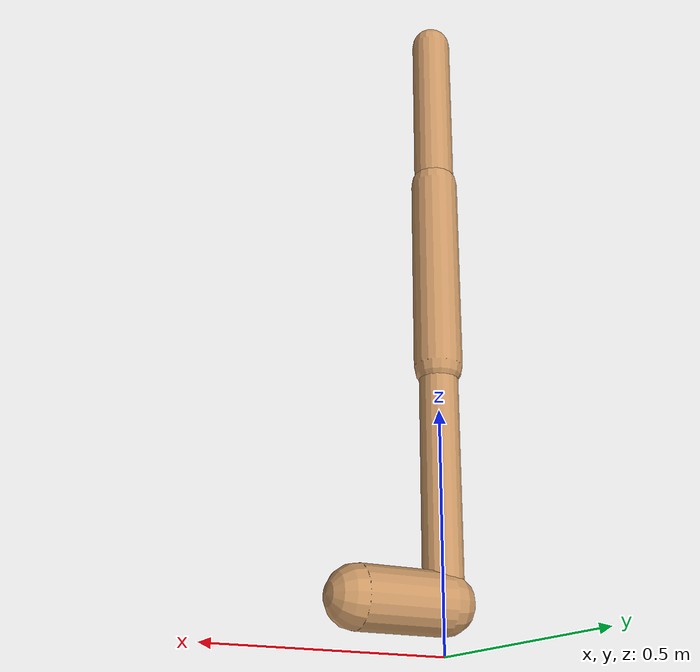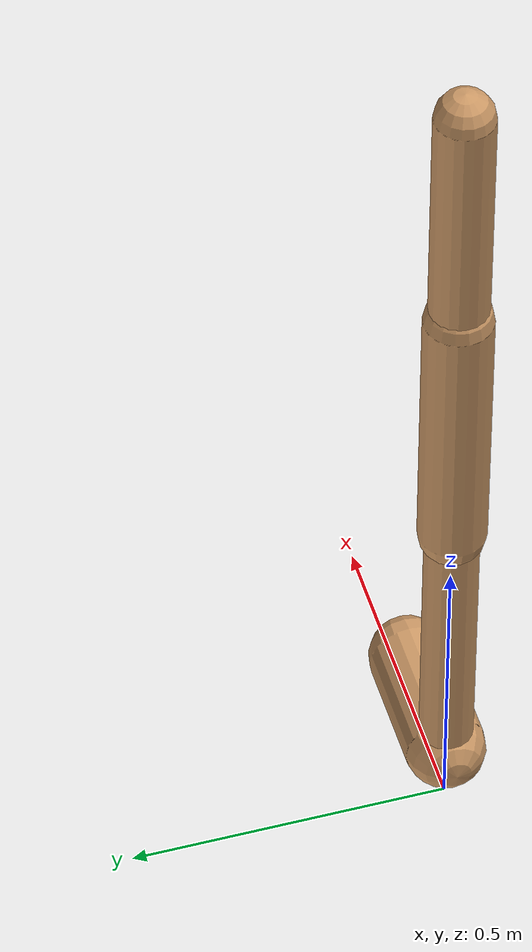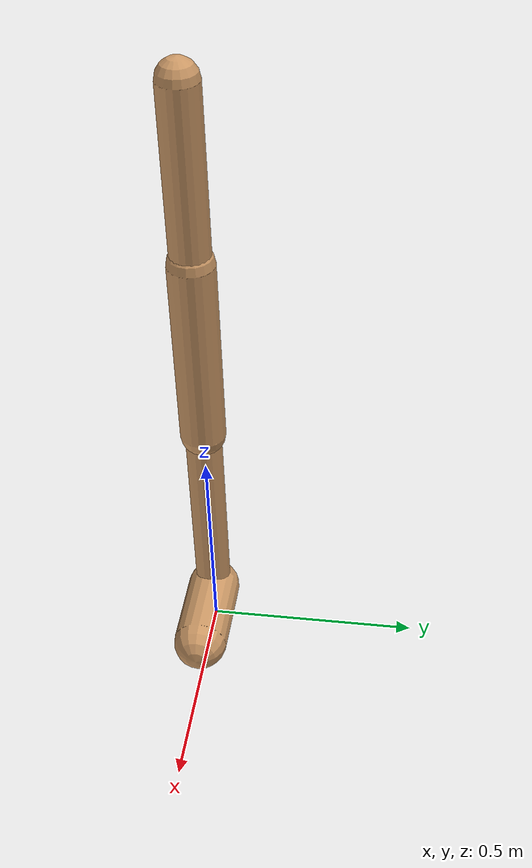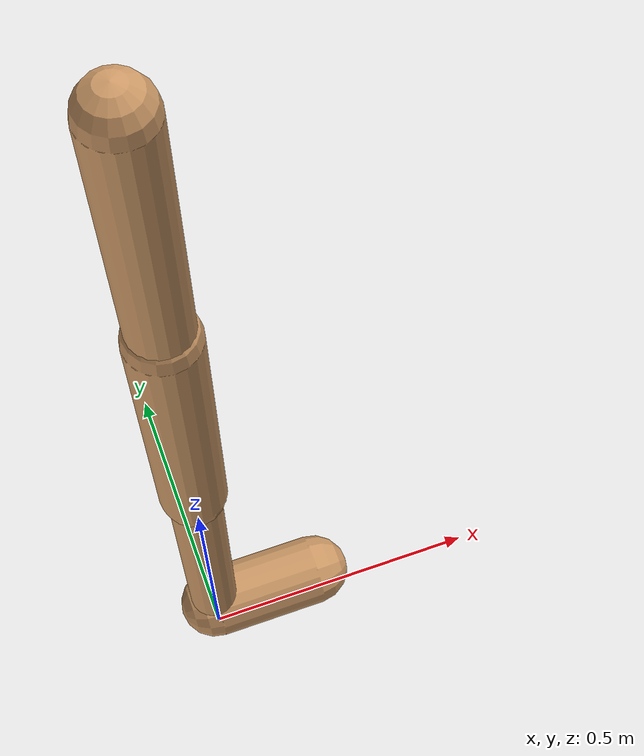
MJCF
<mujoco model="walker2d">
  <compiler angle="degree" coordinate="global" inertiafromgeom="true" />
  <default>
    <joint armature="0.01" damping=".1" limited="true" />
    <geom conaffinity="0" condim="3" contype="1" density="1000" friction="0.8 .1 .1" rgba="0.8 0.6 .4 1" />
  </default>
  <option integrator="RK4" timestep="0.002" />
  <worldbody>

    <body name="torso" pos="0 0 0.0005712190674055829">
      <joint armature="0" axis="1 0 0" damping="0" limited="false" name="ignorex" pos="0 0 0" stiffness="0" type="slide" />
      <joint armature="0" axis="0 0 1" damping="0" limited="false" name="ignorez" pos="0 0 0" ref="1.25" stiffness="0" type="slide" />
      <joint armature="0" axis="0 1 0" damping="0" limited="false" name="ignorey" pos="0 0 0" stiffness="0" type="hinge" />
      <geom fromto="0 0 1.45 0 0 1.05" name="torso_geom" size="0.04517333094257867" type="capsule" />
      <body name="thigh">
        <joint axis="0 -1 0" name="thigh_joint" pos="0 0 1.05" range="-150 0" type="hinge" />
        <geom fromto="0.0 0.0 1.05 0.0 0.0 0.5997294225470183" name="thigh_geom" size="0.05258408327495573" type="capsule" />
        <body name="leg" pos="0.0 0.0 -0.00027057745298164626">
          <joint axis="0 -1 0" name="leg_joint" pos="0 0 0.6" range="-150 0" type="hinge" />
          <geom fromto="0.0 0.0 0.6 0.0 0.0 0.09969935838557602" name="leg_geom" size="0.042067266619964586" type="capsule" />
          <body name="foot" pos="0.0 0.0 -0.0003006416144239882">
            <joint axis="0 -1 0" name="foot_joint" pos="0 0 0.1" range="-45 45" type="hinge" />
            <geom fromto="0.0 0.0 0.09999999999999999 0.1935365379419679 0.0 0.09999999999999999" name="foot_geom" size="0.06351098565117817" type="capsule" />
          </body>
        </body>
      </body>

      <body name="thigh_left">
        <joint axis="0 -1 0" name="thigh_left_joint" pos="0 0 1.05" range="-150 0" type="hinge" />
        <geom fromto="0.0 0.0 1.05 0.0 0.0 0.5997294225470183" name="thigh_left_geom" rgba=".7 .3 .6 1" size="0.05258408327495573" type="capsule" />
        <body name="leg_left" pos="0.0 0.0 -0.00027057745298164626">
          <joint axis="0 -1 0" name="leg_left_joint" pos="0 0 0.6" range="-150 0" type="hinge" />
          <geom fromto="0.0 0.0 0.6 0.0 0.0 0.09969935838557602" name="leg_left_geom" rgba=".7 .3 .6 1" size="0.042067266619964586" type="capsule" />
          <body name="foot_left" pos="0.0 0.0 -0.0003006416144239882">
            <joint axis="0 -1 0" name="foot_left_joint" pos="0 0 0.1" range="-45 45" type="hinge" />
            <geom fromto="0.0 0.0 0.09999999999999999 0.1935365379419679 0.0 0.09999999999999999" name="foot_left_geom" rgba=".7 .3 .6 1" size="0.06351098565117817" type="capsule" />
          </body>
        </body>
      </body>
    </body>
  </worldbody>
  <actuator>

    <motor ctrllimited="true" ctrlrange="-1.0 1.0" gear="100" joint="thigh_joint" />
    <motor ctrllimited="true" ctrlrange="-1.0 1.0" gear="100" joint="leg_joint" />
    <motor ctrllimited="true" ctrlrange="-1.0 1.0" gear="100" joint="foot_joint" />
    <motor ctrllimited="true" ctrlrange="-1.0 1.0" gear="100" joint="thigh_left_joint" />
    <motor ctrllimited="true" ctrlrange="-1.0 1.0" gear="100" joint="leg_left_joint" />
    <motor ctrllimited="true" ctrlrange="-1.0 1.0" gear="100" joint="foot_left_joint" />

  </actuator>
</mujoco>
